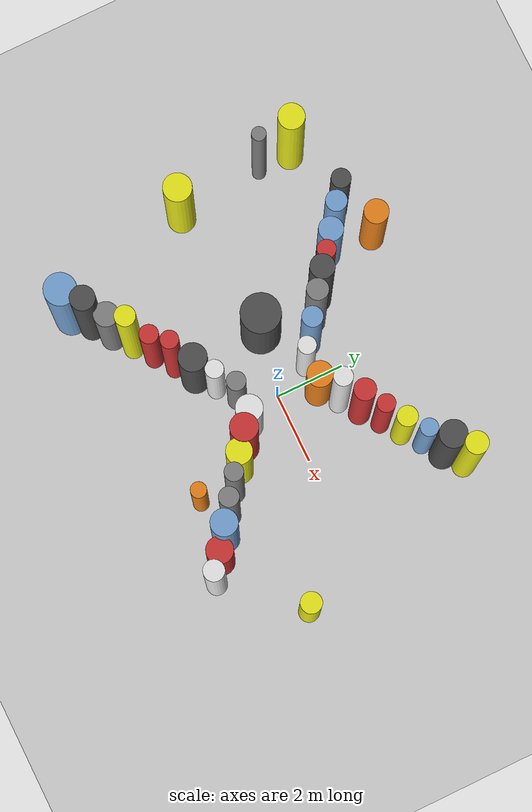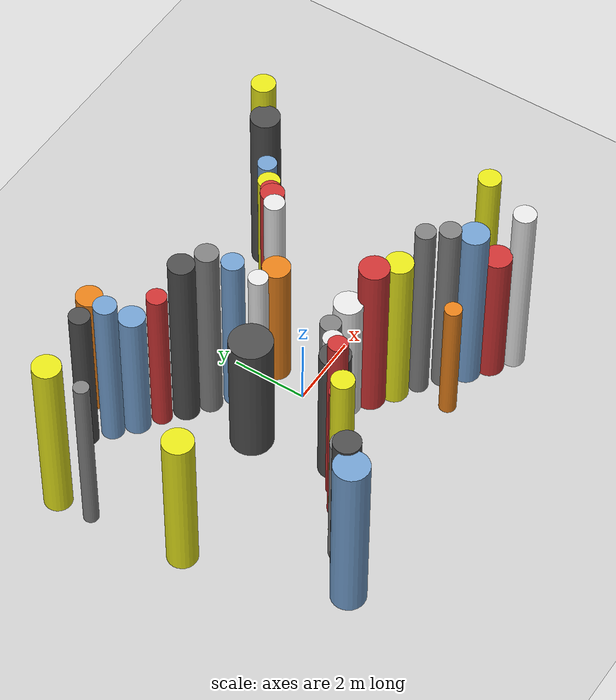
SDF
<?xml version='1.0'?>
<sdf version='1.6'>
  <world name='routeA_rl_v1__dense_recovery__rl_test__bottleneck_corridor__000110'>
    <!-- Sun light -->
    <light name='sun' type='directional'>
      <cast_shadows>1</cast_shadows>
      <pose>0 0 10 0 0 0</pose>
      <diffuse>0.8 0.8 0.8 1</diffuse>
      <specular>0.2 0.2 0.2 1</specular>
      <attenuation>
        <range>1000</range>
        <constant>0.9</constant>
        <linear>0.01</linear>
        <quadratic>0.001</quadratic>
      </attenuation>
      <direction>-0.5 0.1 -0.9</direction>
    </light>

    <!-- Ground plane -->
    <model name='ground_plane'>
      <static>1</static>
      <link name='link'>
        <collision name='collision'>
          <geometry>
            <plane>
              <normal>0 0 1</normal>
              <size>100 100</size>
            </plane>
          </geometry>
          <surface>
            <contact>
              <collide_bitmask>65535</collide_bitmask>
              <ode/>
            </contact>
            <friction>
              <ode>
                <mu>100</mu>
                <mu2>50</mu2>
              </ode>
              <torsional><ode/></torsional>
            </friction>
            <bounce/>
          </surface>
          <max_contacts>10</max_contacts>
        </collision>
        <visual name='visual'>
          <cast_shadows>0</cast_shadows>
          <geometry>
            <plane>
              <normal>0 0 1</normal>
              <size>100 100</size>
            </plane>
          </geometry>
          <material>
            <script>
              <uri>file://media/materials/scripts/gazebo.material</uri>
              <n>Gazebo/Grey</n>
            </script>
          </material>
        </visual>
      </link>
    </model>

    <!-- Environment -->
    <magnetic_field>6e-06 2.3e-05 -4.2e-05</magnetic_field>
    <atmosphere type='adiabatic'/>
    <physics name='default_physics' default='0' type='ode'>
      <gravity>0 0 -9.8</gravity>
      <max_step_size>0.004</max_step_size>
      <real_time_factor>1</real_time_factor>
      <real_time_update_rate>250</real_time_update_rate>
    </physics>
    <scene>
      <ambient>0.4 0.4 0.4 1</ambient>
      <background>0.7 0.7 0.7 1</background>
      <shadows>1</shadows>
    </scene>
    <wind/>
    <spherical_coordinates>
      <surface_model>EARTH_WGS84</surface_model>
      <latitude_deg>0</latitude_deg>
      <longitude_deg>0</longitude_deg>
      <elevation>0</elevation>
      <heading_deg>0</heading_deg>
    </spherical_coordinates>

    <!-- ============ OBSTACLES (40) ============ -->
    <model name='funnel_l_0'>
      <static>1</static>
      <link name='link'>
        <visual name='visual'>
          <geometry>
            <cylinder>
              <radius>0.3495</radius>
              <length>5.2743</length>
            </cylinder>
          </geometry>
          <material>
            <script>
              <n>Gazebo/DarkGrey</n>
              <uri>file://media/materials/scripts/gazebo.material</uri>
            </script>
            <ambient>0.3 0.3 0.3 1</ambient>
          </material>
        </visual>
        <collision name='collision'>
          <geometry>
            <cylinder>
              <radius>0.3495</radius>
              <length>5.2743</length>
            </cylinder>
          </geometry>
          <max_contacts>10</max_contacts>
          <surface>
            <contact><ode/></contact>
            <bounce/>
            <friction>
              <ode><mu>1</mu><mu2>1</mu2></ode>
              <torsional><ode/></torsional>
            </friction>
          </surface>
        </collision>
      </link>
      <pose>-4.0000 -3.8000 2.6372 0 0 0.0000</pose>
    </model>

    <model name='funnel_r_0'>
      <static>1</static>
      <link name='link'>
        <visual name='visual'>
          <geometry>
            <cylinder>
              <radius>0.2734</radius>
              <length>4.7693</length>
            </cylinder>
          </geometry>
          <material>
            <script>
              <n>Gazebo/DarkGrey</n>
              <uri>file://media/materials/scripts/gazebo.material</uri>
            </script>
            <ambient>0.3 0.3 0.3 1</ambient>
          </material>
        </visual>
        <collision name='collision'>
          <geometry>
            <cylinder>
              <radius>0.2734</radius>
              <length>4.7693</length>
            </cylinder>
          </geometry>
          <max_contacts>10</max_contacts>
          <surface>
            <contact><ode/></contact>
            <bounce/>
            <friction>
              <ode><mu>1</mu><mu2>1</mu2></ode>
              <torsional><ode/></torsional>
            </friction>
          </surface>
        </collision>
      </link>
      <pose>-4.0000 3.8000 2.3846 0 0 0.0000</pose>
    </model>

    <model name='funnel_l_1'>
      <static>1</static>
      <link name='link'>
        <visual name='visual'>
          <geometry>
            <cylinder>
              <radius>0.3476</radius>
              <length>4.3640</length>
            </cylinder>
          </geometry>
          <material>
            <script>
              <n>Gazebo/Grey</n>
              <uri>file://media/materials/scripts/gazebo.material</uri>
            </script>
            <ambient>0.5 0.5 0.5 1</ambient>
          </material>
        </visual>
        <collision name='collision'>
          <geometry>
            <cylinder>
              <radius>0.3476</radius>
              <length>4.3640</length>
            </cylinder>
          </geometry>
          <max_contacts>10</max_contacts>
          <surface>
            <contact><ode/></contact>
            <bounce/>
            <friction>
              <ode><mu>1</mu><mu2>1</mu2></ode>
              <torsional><ode/></torsional>
            </friction>
          </surface>
        </collision>
      </link>
      <pose>-3.4857 -3.4071 2.1820 0 0 0.0000</pose>
    </model>

    <model name='funnel_r_1'>
      <static>1</static>
      <link name='link'>
        <visual name='visual'>
          <geometry>
            <cylinder>
              <radius>0.2975</radius>
              <length>4.9099</length>
            </cylinder>
          </geometry>
          <material>
            <script>
              <n>Gazebo/Blue</n>
              <uri>file://media/materials/scripts/gazebo.material</uri>
            </script>
            <ambient>0.447 0.624 0.812 1</ambient>
          </material>
        </visual>
        <collision name='collision'>
          <geometry>
            <cylinder>
              <radius>0.2975</radius>
              <length>4.9099</length>
            </cylinder>
          </geometry>
          <max_contacts>10</max_contacts>
          <surface>
            <contact><ode/></contact>
            <bounce/>
            <friction>
              <ode><mu>1</mu><mu2>1</mu2></ode>
              <torsional><ode/></torsional>
            </friction>
          </surface>
        </collision>
      </link>
      <pose>-3.4857 3.4071 2.4549 0 0 0.0000</pose>
    </model>

    <model name='funnel_l_2'>
      <static>1</static>
      <link name='link'>
        <visual name='visual'>
          <geometry>
            <cylinder>
              <radius>0.2899</radius>
              <length>5.9528</length>
            </cylinder>
          </geometry>
          <material>
            <script>
              <n>Gazebo/Yellow</n>
              <uri>file://media/materials/scripts/gazebo.material</uri>
            </script>
            <ambient>0.9 0.9 0.1 1</ambient>
          </material>
        </visual>
        <collision name='collision'>
          <geometry>
            <cylinder>
              <radius>0.2899</radius>
              <length>5.9528</length>
            </cylinder>
          </geometry>
          <max_contacts>10</max_contacts>
          <surface>
            <contact><ode/></contact>
            <bounce/>
            <friction>
              <ode><mu>1</mu><mu2>1</mu2></ode>
              <torsional><ode/></torsional>
            </friction>
          </surface>
        </collision>
      </link>
      <pose>-2.9714 -3.0143 2.9764 0 0 0.0000</pose>
    </model>

    <model name='funnel_r_2'>
      <static>1</static>
      <link name='link'>
        <visual name='visual'>
          <geometry>
            <cylinder>
              <radius>0.3441</radius>
              <length>4.2209</length>
            </cylinder>
          </geometry>
          <material>
            <script>
              <n>Gazebo/Blue</n>
              <uri>file://media/materials/scripts/gazebo.material</uri>
            </script>
            <ambient>0.447 0.624 0.812 1</ambient>
          </material>
        </visual>
        <collision name='collision'>
          <geometry>
            <cylinder>
              <radius>0.3441</radius>
              <length>4.2209</length>
            </cylinder>
          </geometry>
          <max_contacts>10</max_contacts>
          <surface>
            <contact><ode/></contact>
            <bounce/>
            <friction>
              <ode><mu>1</mu><mu2>1</mu2></ode>
              <torsional><ode/></torsional>
            </friction>
          </surface>
        </collision>
      </link>
      <pose>-2.9714 3.0143 2.1105 0 0 0.0000</pose>
    </model>

    <model name='funnel_l_3'>
      <static>1</static>
      <link name='link'>
        <visual name='visual'>
          <geometry>
            <cylinder>
              <radius>0.2662</radius>
              <length>4.6825</length>
            </cylinder>
          </geometry>
          <material>
            <script>
              <n>Gazebo/Red</n>
              <uri>file://media/materials/scripts/gazebo.material</uri>
            </script>
            <ambient>0.8 0.2 0.2 1</ambient>
          </material>
        </visual>
        <collision name='collision'>
          <geometry>
            <cylinder>
              <radius>0.2662</radius>
              <length>4.6825</length>
            </cylinder>
          </geometry>
          <max_contacts>10</max_contacts>
          <surface>
            <contact><ode/></contact>
            <bounce/>
            <friction>
              <ode><mu>1</mu><mu2>1</mu2></ode>
              <torsional><ode/></torsional>
            </friction>
          </surface>
        </collision>
      </link>
      <pose>-2.4571 -2.6214 2.3412 0 0 0.0000</pose>
    </model>

    <model name='funnel_r_3'>
      <static>1</static>
      <link name='link'>
        <visual name='visual'>
          <geometry>
            <cylinder>
              <radius>0.2617</radius>
              <length>4.7185</length>
            </cylinder>
          </geometry>
          <material>
            <script>
              <n>Gazebo/Red</n>
              <uri>file://media/materials/scripts/gazebo.material</uri>
            </script>
            <ambient>0.8 0.2 0.2 1</ambient>
          </material>
        </visual>
        <collision name='collision'>
          <geometry>
            <cylinder>
              <radius>0.2617</radius>
              <length>4.7185</length>
            </cylinder>
          </geometry>
          <max_contacts>10</max_contacts>
          <surface>
            <contact><ode/></contact>
            <bounce/>
            <friction>
              <ode><mu>1</mu><mu2>1</mu2></ode>
              <torsional><ode/></torsional>
            </friction>
          </surface>
        </collision>
      </link>
      <pose>-2.4571 2.6214 2.3593 0 0 0.0000</pose>
    </model>

    <model name='funnel_l_4'>
      <static>1</static>
      <link name='link'>
        <visual name='visual'>
          <geometry>
            <cylinder>
              <radius>0.2526</radius>
              <length>5.6803</length>
            </cylinder>
          </geometry>
          <material>
            <script>
              <n>Gazebo/Red</n>
              <uri>file://media/materials/scripts/gazebo.material</uri>
            </script>
            <ambient>0.8 0.2 0.2 1</ambient>
          </material>
        </visual>
        <collision name='collision'>
          <geometry>
            <cylinder>
              <radius>0.2526</radius>
              <length>5.6803</length>
            </cylinder>
          </geometry>
          <max_contacts>10</max_contacts>
          <surface>
            <contact><ode/></contact>
            <bounce/>
            <friction>
              <ode><mu>1</mu><mu2>1</mu2></ode>
              <torsional><ode/></torsional>
            </friction>
          </surface>
        </collision>
      </link>
      <pose>-1.9429 -2.2286 2.8401 0 0 0.0000</pose>
    </model>

    <model name='funnel_r_4'>
      <static>1</static>
      <link name='link'>
        <visual name='visual'>
          <geometry>
            <cylinder>
              <radius>0.3395</radius>
              <length>5.6719</length>
            </cylinder>
          </geometry>
          <material>
            <script>
              <n>Gazebo/DarkGrey</n>
              <uri>file://media/materials/scripts/gazebo.material</uri>
            </script>
            <ambient>0.3 0.3 0.3 1</ambient>
          </material>
        </visual>
        <collision name='collision'>
          <geometry>
            <cylinder>
              <radius>0.3395</radius>
              <length>5.6719</length>
            </cylinder>
          </geometry>
          <max_contacts>10</max_contacts>
          <surface>
            <contact><ode/></contact>
            <bounce/>
            <friction>
              <ode><mu>1</mu><mu2>1</mu2></ode>
              <torsional><ode/></torsional>
            </friction>
          </surface>
        </collision>
      </link>
      <pose>-1.9429 2.2286 2.8360 0 0 0.0000</pose>
    </model>

    <model name='funnel_l_5'>
      <static>1</static>
      <link name='link'>
        <visual name='visual'>
          <geometry>
            <cylinder>
              <radius>0.3987</radius>
              <length>4.4456</length>
            </cylinder>
          </geometry>
          <material>
            <script>
              <n>Gazebo/DarkGrey</n>
              <uri>file://media/materials/scripts/gazebo.material</uri>
            </script>
            <ambient>0.3 0.3 0.3 1</ambient>
          </material>
        </visual>
        <collision name='collision'>
          <geometry>
            <cylinder>
              <radius>0.3987</radius>
              <length>4.4456</length>
            </cylinder>
          </geometry>
          <max_contacts>10</max_contacts>
          <surface>
            <contact><ode/></contact>
            <bounce/>
            <friction>
              <ode><mu>1</mu><mu2>1</mu2></ode>
              <torsional><ode/></torsional>
            </friction>
          </surface>
        </collision>
      </link>
      <pose>-1.4286 -1.8357 2.2228 0 0 0.0000</pose>
    </model>

    <model name='funnel_r_5'>
      <static>1</static>
      <link name='link'>
        <visual name='visual'>
          <geometry>
            <cylinder>
              <radius>0.3004</radius>
              <length>5.8337</length>
            </cylinder>
          </geometry>
          <material>
            <script>
              <n>Gazebo/Grey</n>
              <uri>file://media/materials/scripts/gazebo.material</uri>
            </script>
            <ambient>0.5 0.5 0.5 1</ambient>
          </material>
        </visual>
        <collision name='collision'>
          <geometry>
            <cylinder>
              <radius>0.3004</radius>
              <length>5.8337</length>
            </cylinder>
          </geometry>
          <max_contacts>10</max_contacts>
          <surface>
            <contact><ode/></contact>
            <bounce/>
            <friction>
              <ode><mu>1</mu><mu2>1</mu2></ode>
              <torsional><ode/></torsional>
            </friction>
          </surface>
        </collision>
      </link>
      <pose>-1.4286 1.8357 2.9169 0 0 0.0000</pose>
    </model>

    <model name='funnel_l_6'>
      <static>1</static>
      <link name='link'>
        <visual name='visual'>
          <geometry>
            <cylinder>
              <radius>0.2596</radius>
              <length>4.2864</length>
            </cylinder>
          </geometry>
          <material>
            <script>
              <n>Gazebo/White</n>
              <uri>file://media/materials/scripts/gazebo.material</uri>
            </script>
            <ambient>0.9 0.9 0.9 1</ambient>
          </material>
        </visual>
        <collision name='collision'>
          <geometry>
            <cylinder>
              <radius>0.2596</radius>
              <length>4.2864</length>
            </cylinder>
          </geometry>
          <max_contacts>10</max_contacts>
          <surface>
            <contact><ode/></contact>
            <bounce/>
            <friction>
              <ode><mu>1</mu><mu2>1</mu2></ode>
              <torsional><ode/></torsional>
            </friction>
          </surface>
        </collision>
      </link>
      <pose>-0.9143 -1.4429 2.1432 0 0 0.0000</pose>
    </model>

    <model name='funnel_r_6'>
      <static>1</static>
      <link name='link'>
        <visual name='visual'>
          <geometry>
            <cylinder>
              <radius>0.2898</radius>
              <length>5.2570</length>
            </cylinder>
          </geometry>
          <material>
            <script>
              <n>Gazebo/Blue</n>
              <uri>file://media/materials/scripts/gazebo.material</uri>
            </script>
            <ambient>0.447 0.624 0.812 1</ambient>
          </material>
        </visual>
        <collision name='collision'>
          <geometry>
            <cylinder>
              <radius>0.2898</radius>
              <length>5.2570</length>
            </cylinder>
          </geometry>
          <max_contacts>10</max_contacts>
          <surface>
            <contact><ode/></contact>
            <bounce/>
            <friction>
              <ode><mu>1</mu><mu2>1</mu2></ode>
              <torsional><ode/></torsional>
            </friction>
          </surface>
        </collision>
      </link>
      <pose>-0.9143 1.4429 2.6285 0 0 0.0000</pose>
    </model>

    <model name='funnel_l_7'>
      <static>1</static>
      <link name='link'>
        <visual name='visual'>
          <geometry>
            <cylinder>
              <radius>0.2685</radius>
              <length>4.0621</length>
            </cylinder>
          </geometry>
          <material>
            <script>
              <n>Gazebo/Grey</n>
              <uri>file://media/materials/scripts/gazebo.material</uri>
            </script>
            <ambient>0.5 0.5 0.5 1</ambient>
          </material>
        </visual>
        <collision name='collision'>
          <geometry>
            <cylinder>
              <radius>0.2685</radius>
              <length>4.0621</length>
            </cylinder>
          </geometry>
          <max_contacts>10</max_contacts>
          <surface>
            <contact><ode/></contact>
            <bounce/>
            <friction>
              <ode><mu>1</mu><mu2>1</mu2></ode>
              <torsional><ode/></torsional>
            </friction>
          </surface>
        </collision>
      </link>
      <pose>-0.4000 -1.0500 2.0311 0 0 0.0000</pose>
    </model>

    <model name='funnel_r_7'>
      <static>1</static>
      <link name='link'>
        <visual name='visual'>
          <geometry>
            <cylinder>
              <radius>0.2539</radius>
              <length>4.4147</length>
            </cylinder>
          </geometry>
          <material>
            <script>
              <n>Gazebo/White</n>
              <uri>file://media/materials/scripts/gazebo.material</uri>
            </script>
            <ambient>0.9 0.9 0.9 1</ambient>
          </material>
        </visual>
        <collision name='collision'>
          <geometry>
            <cylinder>
              <radius>0.2539</radius>
              <length>4.4147</length>
            </cylinder>
          </geometry>
          <max_contacts>10</max_contacts>
          <surface>
            <contact><ode/></contact>
            <bounce/>
            <friction>
              <ode><mu>1</mu><mu2>1</mu2></ode>
              <torsional><ode/></torsional>
            </friction>
          </surface>
        </collision>
      </link>
      <pose>-0.4000 1.0500 2.2074 0 0 0.0000</pose>
    </model>

    <model name='funnel_out_l_0'>
      <static>1</static>
      <link name='link'>
        <visual name='visual'>
          <geometry>
            <cylinder>
              <radius>0.3787</radius>
              <length>4.0221</length>
            </cylinder>
          </geometry>
          <material>
            <script>
              <n>Gazebo/White</n>
              <uri>file://media/materials/scripts/gazebo.material</uri>
            </script>
            <ambient>0.9 0.9 0.9 1</ambient>
          </material>
        </visual>
        <collision name='collision'>
          <geometry>
            <cylinder>
              <radius>0.3787</radius>
              <length>4.0221</length>
            </cylinder>
          </geometry>
          <max_contacts>10</max_contacts>
          <surface>
            <contact><ode/></contact>
            <bounce/>
            <friction>
              <ode><mu>1</mu><mu2>1</mu2></ode>
              <torsional><ode/></torsional>
            </friction>
          </surface>
        </collision>
      </link>
      <pose>0.4000 -1.0500 2.0110 0 0 0.0000</pose>
    </model>

    <model name='funnel_out_r_0'>
      <static>1</static>
      <link name='link'>
        <visual name='visual'>
          <geometry>
            <cylinder>
              <radius>0.3637</radius>
              <length>4.0129</length>
            </cylinder>
          </geometry>
          <material>
            <script>
              <n>Gazebo/Orange</n>
              <uri>file://media/materials/scripts/gazebo.material</uri>
            </script>
            <ambient>0.9 0.5 0.1 1</ambient>
          </material>
        </visual>
        <collision name='collision'>
          <geometry>
            <cylinder>
              <radius>0.3637</radius>
              <length>4.0129</length>
            </cylinder>
          </geometry>
          <max_contacts>10</max_contacts>
          <surface>
            <contact><ode/></contact>
            <bounce/>
            <friction>
              <ode><mu>1</mu><mu2>1</mu2></ode>
              <torsional><ode/></torsional>
            </friction>
          </surface>
        </collision>
      </link>
      <pose>0.4000 1.0500 2.0064 0 0 0.0000</pose>
    </model>

    <model name='funnel_out_l_1'>
      <static>1</static>
      <link name='link'>
        <visual name='visual'>
          <geometry>
            <cylinder>
              <radius>0.3891</radius>
              <length>5.0916</length>
            </cylinder>
          </geometry>
          <material>
            <script>
              <n>Gazebo/Red</n>
              <uri>file://media/materials/scripts/gazebo.material</uri>
            </script>
            <ambient>0.8 0.2 0.2 1</ambient>
          </material>
        </visual>
        <collision name='collision'>
          <geometry>
            <cylinder>
              <radius>0.3891</radius>
              <length>5.0916</length>
            </cylinder>
          </geometry>
          <max_contacts>10</max_contacts>
          <surface>
            <contact><ode/></contact>
            <bounce/>
            <friction>
              <ode><mu>1</mu><mu2>1</mu2></ode>
              <torsional><ode/></torsional>
            </friction>
          </surface>
        </collision>
      </link>
      <pose>0.9143 -1.4429 2.5458 0 0 0.0000</pose>
    </model>

    <model name='funnel_out_r_1'>
      <static>1</static>
      <link name='link'>
        <visual name='visual'>
          <geometry>
            <cylinder>
              <radius>0.2661</radius>
              <length>5.6781</length>
            </cylinder>
          </geometry>
          <material>
            <script>
              <n>Gazebo/White</n>
              <uri>file://media/materials/scripts/gazebo.material</uri>
            </script>
            <ambient>0.9 0.9 0.9 1</ambient>
          </material>
        </visual>
        <collision name='collision'>
          <geometry>
            <cylinder>
              <radius>0.2661</radius>
              <length>5.6781</length>
            </cylinder>
          </geometry>
          <max_contacts>10</max_contacts>
          <surface>
            <contact><ode/></contact>
            <bounce/>
            <friction>
              <ode><mu>1</mu><mu2>1</mu2></ode>
              <torsional><ode/></torsional>
            </friction>
          </surface>
        </collision>
      </link>
      <pose>0.9143 1.4429 2.8390 0 0 0.0000</pose>
    </model>

    <model name='funnel_out_l_2'>
      <static>1</static>
      <link name='link'>
        <visual name='visual'>
          <geometry>
            <cylinder>
              <radius>0.3630</radius>
              <length>5.0279</length>
            </cylinder>
          </geometry>
          <material>
            <script>
              <n>Gazebo/Yellow</n>
              <uri>file://media/materials/scripts/gazebo.material</uri>
            </script>
            <ambient>0.9 0.9 0.1 1</ambient>
          </material>
        </visual>
        <collision name='collision'>
          <geometry>
            <cylinder>
              <radius>0.3630</radius>
              <length>5.0279</length>
            </cylinder>
          </geometry>
          <max_contacts>10</max_contacts>
          <surface>
            <contact><ode/></contact>
            <bounce/>
            <friction>
              <ode><mu>1</mu><mu2>1</mu2></ode>
              <torsional><ode/></torsional>
            </friction>
          </surface>
        </collision>
      </link>
      <pose>1.4286 -1.8357 2.5139 0 0 0.0000</pose>
    </model>

    <model name='funnel_out_r_2'>
      <static>1</static>
      <link name='link'>
        <visual name='visual'>
          <geometry>
            <cylinder>
              <radius>0.3073</radius>
              <length>5.3096</length>
            </cylinder>
          </geometry>
          <material>
            <script>
              <n>Gazebo/Red</n>
              <uri>file://media/materials/scripts/gazebo.material</uri>
            </script>
            <ambient>0.8 0.2 0.2 1</ambient>
          </material>
        </visual>
        <collision name='collision'>
          <geometry>
            <cylinder>
              <radius>0.3073</radius>
              <length>5.3096</length>
            </cylinder>
          </geometry>
          <max_contacts>10</max_contacts>
          <surface>
            <contact><ode/></contact>
            <bounce/>
            <friction>
              <ode><mu>1</mu><mu2>1</mu2></ode>
              <torsional><ode/></torsional>
            </friction>
          </surface>
        </collision>
      </link>
      <pose>1.4286 1.8357 2.6548 0 0 0.0000</pose>
    </model>

    <model name='funnel_out_l_3'>
      <static>1</static>
      <link name='link'>
        <visual name='visual'>
          <geometry>
            <cylinder>
              <radius>0.2598</radius>
              <length>5.9294</length>
            </cylinder>
          </geometry>
          <material>
            <script>
              <n>Gazebo/Grey</n>
              <uri>file://media/materials/scripts/gazebo.material</uri>
            </script>
            <ambient>0.5 0.5 0.5 1</ambient>
          </material>
        </visual>
        <collision name='collision'>
          <geometry>
            <cylinder>
              <radius>0.2598</radius>
              <length>5.9294</length>
            </cylinder>
          </geometry>
          <max_contacts>10</max_contacts>
          <surface>
            <contact><ode/></contact>
            <bounce/>
            <friction>
              <ode><mu>1</mu><mu2>1</mu2></ode>
              <torsional><ode/></torsional>
            </friction>
          </surface>
        </collision>
      </link>
      <pose>1.9429 -2.2286 2.9647 0 0 0.0000</pose>
    </model>

    <model name='funnel_out_r_3'>
      <static>1</static>
      <link name='link'>
        <visual name='visual'>
          <geometry>
            <cylinder>
              <radius>0.2555</radius>
              <length>4.7506</length>
            </cylinder>
          </geometry>
          <material>
            <script>
              <n>Gazebo/Red</n>
              <uri>file://media/materials/scripts/gazebo.material</uri>
            </script>
            <ambient>0.8 0.2 0.2 1</ambient>
          </material>
        </visual>
        <collision name='collision'>
          <geometry>
            <cylinder>
              <radius>0.2555</radius>
              <length>4.7506</length>
            </cylinder>
          </geometry>
          <max_contacts>10</max_contacts>
          <surface>
            <contact><ode/></contact>
            <bounce/>
            <friction>
              <ode><mu>1</mu><mu2>1</mu2></ode>
              <torsional><ode/></torsional>
            </friction>
          </surface>
        </collision>
      </link>
      <pose>1.9429 2.2286 2.3753 0 0 0.0000</pose>
    </model>

    <model name='funnel_out_l_4'>
      <static>1</static>
      <link name='link'>
        <visual name='visual'>
          <geometry>
            <cylinder>
              <radius>0.2771</radius>
              <length>5.7361</length>
            </cylinder>
          </geometry>
          <material>
            <script>
              <n>Gazebo/Grey</n>
              <uri>file://media/materials/scripts/gazebo.material</uri>
            </script>
            <ambient>0.5 0.5 0.5 1</ambient>
          </material>
        </visual>
        <collision name='collision'>
          <geometry>
            <cylinder>
              <radius>0.2771</radius>
              <length>5.7361</length>
            </cylinder>
          </geometry>
          <max_contacts>10</max_contacts>
          <surface>
            <contact><ode/></contact>
            <bounce/>
            <friction>
              <ode><mu>1</mu><mu2>1</mu2></ode>
              <torsional><ode/></torsional>
            </friction>
          </surface>
        </collision>
      </link>
      <pose>2.4571 -2.6214 2.8680 0 0 0.0000</pose>
    </model>

    <model name='funnel_out_r_4'>
      <static>1</static>
      <link name='link'>
        <visual name='visual'>
          <geometry>
            <cylinder>
              <radius>0.2878</radius>
              <length>4.3011</length>
            </cylinder>
          </geometry>
          <material>
            <script>
              <n>Gazebo/Yellow</n>
              <uri>file://media/materials/scripts/gazebo.material</uri>
            </script>
            <ambient>0.9 0.9 0.1 1</ambient>
          </material>
        </visual>
        <collision name='collision'>
          <geometry>
            <cylinder>
              <radius>0.2878</radius>
              <length>4.3011</length>
            </cylinder>
          </geometry>
          <max_contacts>10</max_contacts>
          <surface>
            <contact><ode/></contact>
            <bounce/>
            <friction>
              <ode><mu>1</mu><mu2>1</mu2></ode>
              <torsional><ode/></torsional>
            </friction>
          </surface>
        </collision>
      </link>
      <pose>2.4571 2.6214 2.1505 0 0 0.0000</pose>
    </model>

    <model name='funnel_out_l_5'>
      <static>1</static>
      <link name='link'>
        <visual name='visual'>
          <geometry>
            <cylinder>
              <radius>0.3755</radius>
              <length>5.3599</length>
            </cylinder>
          </geometry>
          <material>
            <script>
              <n>Gazebo/Blue</n>
              <uri>file://media/materials/scripts/gazebo.material</uri>
            </script>
            <ambient>0.447 0.624 0.812 1</ambient>
          </material>
        </visual>
        <collision name='collision'>
          <geometry>
            <cylinder>
              <radius>0.3755</radius>
              <length>5.3599</length>
            </cylinder>
          </geometry>
          <max_contacts>10</max_contacts>
          <surface>
            <contact><ode/></contact>
            <bounce/>
            <friction>
              <ode><mu>1</mu><mu2>1</mu2></ode>
              <torsional><ode/></torsional>
            </friction>
          </surface>
        </collision>
      </link>
      <pose>2.9714 -3.0143 2.6800 0 0 0.0000</pose>
    </model>

    <model name='funnel_out_r_5'>
      <static>1</static>
      <link name='link'>
        <visual name='visual'>
          <geometry>
            <cylinder>
              <radius>0.2519</radius>
              <length>4.2420</length>
            </cylinder>
          </geometry>
          <material>
            <script>
              <n>Gazebo/Blue</n>
              <uri>file://media/materials/scripts/gazebo.material</uri>
            </script>
            <ambient>0.447 0.624 0.812 1</ambient>
          </material>
        </visual>
        <collision name='collision'>
          <geometry>
            <cylinder>
              <radius>0.2519</radius>
              <length>4.2420</length>
            </cylinder>
          </geometry>
          <max_contacts>10</max_contacts>
          <surface>
            <contact><ode/></contact>
            <bounce/>
            <friction>
              <ode><mu>1</mu><mu2>1</mu2></ode>
              <torsional><ode/></torsional>
            </friction>
          </surface>
        </collision>
      </link>
      <pose>2.9714 3.0143 2.1210 0 0 0.0000</pose>
    </model>

    <model name='funnel_out_l_6'>
      <static>1</static>
      <link name='link'>
        <visual name='visual'>
          <geometry>
            <cylinder>
              <radius>0.3778</radius>
              <length>4.2499</length>
            </cylinder>
          </geometry>
          <material>
            <script>
              <n>Gazebo/Red</n>
              <uri>file://media/materials/scripts/gazebo.material</uri>
            </script>
            <ambient>0.8 0.2 0.2 1</ambient>
          </material>
        </visual>
        <collision name='collision'>
          <geometry>
            <cylinder>
              <radius>0.3778</radius>
              <length>4.2499</length>
            </cylinder>
          </geometry>
          <max_contacts>10</max_contacts>
          <surface>
            <contact><ode/></contact>
            <bounce/>
            <friction>
              <ode><mu>1</mu><mu2>1</mu2></ode>
              <torsional><ode/></torsional>
            </friction>
          </surface>
        </collision>
      </link>
      <pose>3.4857 -3.4071 2.1250 0 0 0.0000</pose>
    </model>

    <model name='funnel_out_r_6'>
      <static>1</static>
      <link name='link'>
        <visual name='visual'>
          <geometry>
            <cylinder>
              <radius>0.3854</radius>
              <length>5.2518</length>
            </cylinder>
          </geometry>
          <material>
            <script>
              <n>Gazebo/DarkGrey</n>
              <uri>file://media/materials/scripts/gazebo.material</uri>
            </script>
            <ambient>0.3 0.3 0.3 1</ambient>
          </material>
        </visual>
        <collision name='collision'>
          <geometry>
            <cylinder>
              <radius>0.3854</radius>
              <length>5.2518</length>
            </cylinder>
          </geometry>
          <max_contacts>10</max_contacts>
          <surface>
            <contact><ode/></contact>
            <bounce/>
            <friction>
              <ode><mu>1</mu><mu2>1</mu2></ode>
              <torsional><ode/></torsional>
            </friction>
          </surface>
        </collision>
      </link>
      <pose>3.4857 3.4071 2.6259 0 0 0.0000</pose>
    </model>

    <model name='funnel_out_l_7'>
      <static>1</static>
      <link name='link'>
        <visual name='visual'>
          <geometry>
            <cylinder>
              <radius>0.2949</radius>
              <length>5.5769</length>
            </cylinder>
          </geometry>
          <material>
            <script>
              <n>Gazebo/White</n>
              <uri>file://media/materials/scripts/gazebo.material</uri>
            </script>
            <ambient>0.9 0.9 0.9 1</ambient>
          </material>
        </visual>
        <collision name='collision'>
          <geometry>
            <cylinder>
              <radius>0.2949</radius>
              <length>5.5769</length>
            </cylinder>
          </geometry>
          <max_contacts>10</max_contacts>
          <surface>
            <contact><ode/></contact>
            <bounce/>
            <friction>
              <ode><mu>1</mu><mu2>1</mu2></ode>
              <torsional><ode/></torsional>
            </friction>
          </surface>
        </collision>
      </link>
      <pose>4.0000 -3.8000 2.7885 0 0 0.0000</pose>
    </model>

    <model name='funnel_out_r_7'>
      <static>1</static>
      <link name='link'>
        <visual name='visual'>
          <geometry>
            <cylinder>
              <radius>0.3157</radius>
              <length>5.7847</length>
            </cylinder>
          </geometry>
          <material>
            <script>
              <n>Gazebo/Yellow</n>
              <uri>file://media/materials/scripts/gazebo.material</uri>
            </script>
            <ambient>0.9 0.9 0.1 1</ambient>
          </material>
        </visual>
        <collision name='collision'>
          <geometry>
            <cylinder>
              <radius>0.3157</radius>
              <length>5.7847</length>
            </cylinder>
          </geometry>
          <max_contacts>10</max_contacts>
          <surface>
            <contact><ode/></contact>
            <bounce/>
            <friction>
              <ode><mu>1</mu><mu2>1</mu2></ode>
              <torsional><ode/></torsional>
            </friction>
          </surface>
        </collision>
      </link>
      <pose>4.0000 3.8000 2.8923 0 0 0.0000</pose>
    </model>

    <model name='bn_scatter_0'>
      <static>1</static>
      <link name='link'>
        <visual name='visual'>
          <geometry>
            <cylinder>
              <radius>0.3450</radius>
              <length>4.0482</length>
            </cylinder>
          </geometry>
          <material>
            <script>
              <n>Gazebo/Orange</n>
              <uri>file://media/materials/scripts/gazebo.material</uri>
            </script>
            <ambient>0.9 0.5 0.1 1</ambient>
          </material>
        </visual>
        <collision name='collision'>
          <geometry>
            <cylinder>
              <radius>0.3450</radius>
              <length>4.0482</length>
            </cylinder>
          </geometry>
          <max_contacts>10</max_contacts>
          <surface>
            <contact><ode/></contact>
            <bounce/>
            <friction>
              <ode><mu>1</mu><mu2>1</mu2></ode>
              <torsional><ode/></torsional>
            </friction>
          </surface>
        </collision>
      </link>
      <pose>-2.8947 4.3375 2.0241 0 0 0.0000</pose>
    </model>

    <model name='bn_scatter_1'>
      <static>1</static>
      <link name='link'>
        <visual name='visual'>
          <geometry>
            <cylinder>
              <radius>0.2258</radius>
              <length>3.8367</length>
            </cylinder>
          </geometry>
          <material>
            <script>
              <n>Gazebo/Orange</n>
              <uri>file://media/materials/scripts/gazebo.material</uri>
            </script>
            <ambient>0.9 0.5 0.1 1</ambient>
          </material>
        </visual>
        <collision name='collision'>
          <geometry>
            <cylinder>
              <radius>0.2258</radius>
              <length>3.8367</length>
            </cylinder>
          </geometry>
          <max_contacts>10</max_contacts>
          <surface>
            <contact><ode/></contact>
            <bounce/>
            <friction>
              <ode><mu>1</mu><mu2>1</mu2></ode>
              <torsional><ode/></torsional>
            </friction>
          </surface>
        </collision>
      </link>
      <pose>1.7661 -3.2087 1.9184 0 0 0.0000</pose>
    </model>

    <model name='bn_scatter_2'>
      <static>1</static>
      <link name='link'>
        <visual name='visual'>
          <geometry>
            <cylinder>
              <radius>0.3010</radius>
              <length>4.0278</length>
            </cylinder>
          </geometry>
          <material>
            <script>
              <n>Gazebo/Yellow</n>
              <uri>file://media/materials/scripts/gazebo.material</uri>
            </script>
            <ambient>0.9 0.9 0.1 1</ambient>
          </material>
        </visual>
        <collision name='collision'>
          <geometry>
            <cylinder>
              <radius>0.3010</radius>
              <length>4.0278</length>
            </cylinder>
          </geometry>
          <max_contacts>10</max_contacts>
          <surface>
            <contact><ode/></contact>
            <bounce/>
            <friction>
              <ode><mu>1</mu><mu2>1</mu2></ode>
              <torsional><ode/></torsional>
            </friction>
          </surface>
        </collision>
      </link>
      <pose>5.7742 -1.8287 2.0139 0 0 0.0000</pose>
    </model>

    <model name='bn_scatter_3'>
      <static>1</static>
      <link name='link'>
        <visual name='visual'>
          <geometry>
            <cylinder>
              <radius>0.4013</radius>
              <length>4.6016</length>
            </cylinder>
          </geometry>
          <material>
            <script>
              <n>Gazebo/Yellow</n>
              <uri>file://media/materials/scripts/gazebo.material</uri>
            </script>
            <ambient>0.9 0.9 0.1 1</ambient>
          </material>
        </visual>
        <collision name='collision'>
          <geometry>
            <cylinder>
              <radius>0.4013</radius>
              <length>4.6016</length>
            </cylinder>
          </geometry>
          <max_contacts>10</max_contacts>
          <surface>
            <contact><ode/></contact>
            <bounce/>
            <friction>
              <ode><mu>1</mu><mu2>1</mu2></ode>
              <torsional><ode/></torsional>
            </friction>
          </surface>
        </collision>
      </link>
      <pose>-5.7073 -0.2227 2.3008 0 0 0.0000</pose>
    </model>

    <model name='bn_scatter_4'>
      <static>1</static>
      <link name='link'>
        <visual name='visual'>
          <geometry>
            <cylinder>
              <radius>0.2004</radius>
              <length>5.1375</length>
            </cylinder>
          </geometry>
          <material>
            <script>
              <n>Gazebo/Grey</n>
              <uri>file://media/materials/scripts/gazebo.material</uri>
            </script>
            <ambient>0.5 0.5 0.5 1</ambient>
          </material>
        </visual>
        <collision name='collision'>
          <geometry>
            <cylinder>
              <radius>0.2004</radius>
              <length>5.1375</length>
            </cylinder>
          </geometry>
          <max_contacts>10</max_contacts>
          <surface>
            <contact><ode/></contact>
            <bounce/>
            <friction>
              <ode><mu>1</mu><mu2>1</mu2></ode>
              <torsional><ode/></torsional>
            </friction>
          </surface>
        </collision>
      </link>
      <pose>-5.9661 2.3186 2.5687 0 0 0.0000</pose>
    </model>

    <model name='bn_scatter_5'>
      <static>1</static>
      <link name='link'>
        <visual name='visual'>
          <geometry>
            <cylinder>
              <radius>0.5627</radius>
              <length>3.8551</length>
            </cylinder>
          </geometry>
          <material>
            <script>
              <n>Gazebo/DarkGrey</n>
              <uri>file://media/materials/scripts/gazebo.material</uri>
            </script>
            <ambient>0.3 0.3 0.3 1</ambient>
          </material>
        </visual>
        <collision name='collision'>
          <geometry>
            <cylinder>
              <radius>0.5627</radius>
              <length>3.8551</length>
            </cylinder>
          </geometry>
          <max_contacts>10</max_contacts>
          <surface>
            <contact><ode/></contact>
            <bounce/>
            <friction>
              <ode><mu>1</mu><mu2>1</mu2></ode>
              <torsional><ode/></torsional>
            </friction>
          </surface>
        </collision>
      </link>
      <pose>-1.7885 0.3501 1.9275 0 0 0.0000</pose>
    </model>

    <model name='bn_scatter_6'>
      <static>1</static>
      <link name='link'>
        <visual name='visual'>
          <geometry>
            <cylinder>
              <radius>0.3672</radius>
              <length>5.2668</length>
            </cylinder>
          </geometry>
          <material>
            <script>
              <n>Gazebo/Yellow</n>
              <uri>file://media/materials/scripts/gazebo.material</uri>
            </script>
            <ambient>0.9 0.9 0.1 1</ambient>
          </material>
        </visual>
        <collision name='collision'>
          <geometry>
            <cylinder>
              <radius>0.3672</radius>
              <length>5.2668</length>
            </cylinder>
          </geometry>
          <max_contacts>10</max_contacts>
          <surface>
            <contact><ode/></contact>
            <bounce/>
            <friction>
              <ode><mu>1</mu><mu2>1</mu2></ode>
              <torsional><ode/></torsional>
            </friction>
          </surface>
        </collision>
      </link>
      <pose>-5.9894 3.2944 2.6334 0 0 0.0000</pose>
    </model>

    <model name='bn_scatter_7'>
      <static>1</static>
      <link name='link'>
        <visual name='visual'>
          <geometry>
            <cylinder>
              <radius>0.4545</radius>
              <length>5.2142</length>
            </cylinder>
          </geometry>
          <material>
            <script>
              <n>Gazebo/Blue</n>
              <uri>file://media/materials/scripts/gazebo.material</uri>
            </script>
            <ambient>0.447 0.624 0.812 1</ambient>
          </material>
        </visual>
        <collision name='collision'>
          <geometry>
            <cylinder>
              <radius>0.4545</radius>
              <length>5.2142</length>
            </cylinder>
          </geometry>
          <max_contacts>10</max_contacts>
          <surface>
            <contact><ode/></contact>
            <bounce/>
            <friction>
              <ode><mu>1</mu><mu2>1</mu2></ode>
              <torsional><ode/></torsional>
            </friction>
          </surface>
        </collision>
      </link>
      <pose>-4.4780 -4.2274 2.6071 0 0 0.0000</pose>
    </model>

    <!-- GUI camera -->
    <gui fullscreen='0'>
      <camera name='user_camera'>
        <pose>-15 0 18 0 0.85 0.15</pose>
        <view_controller>orbit</view_controller>
        <projection_type>perspective</projection_type>
      </camera>
    </gui>
  </world>
</sdf>
